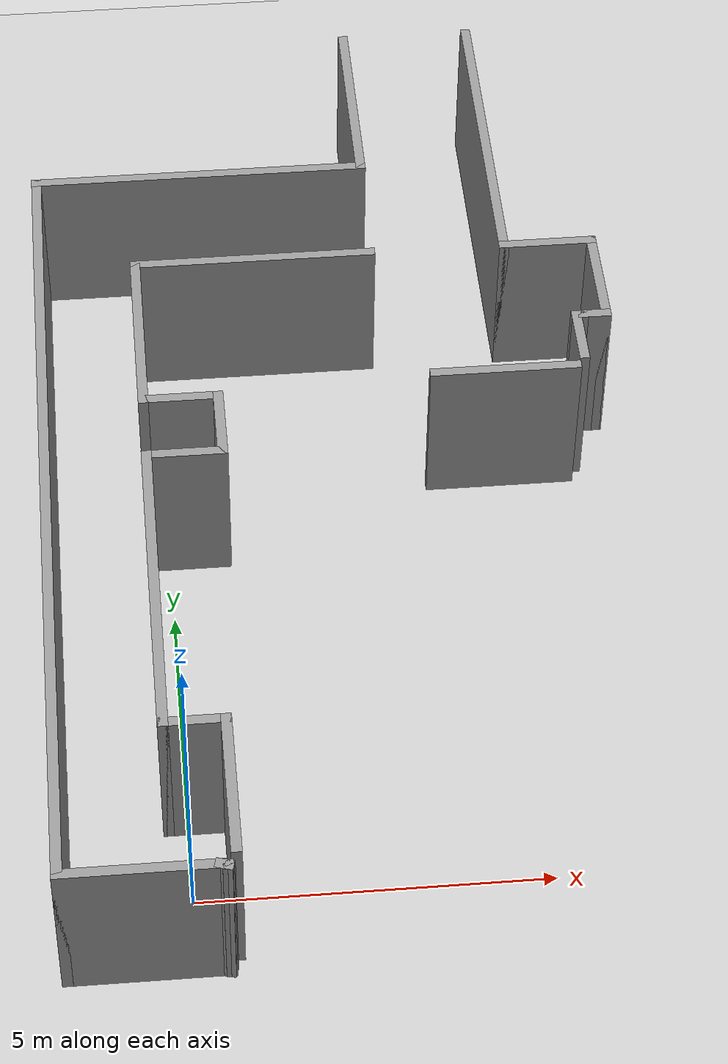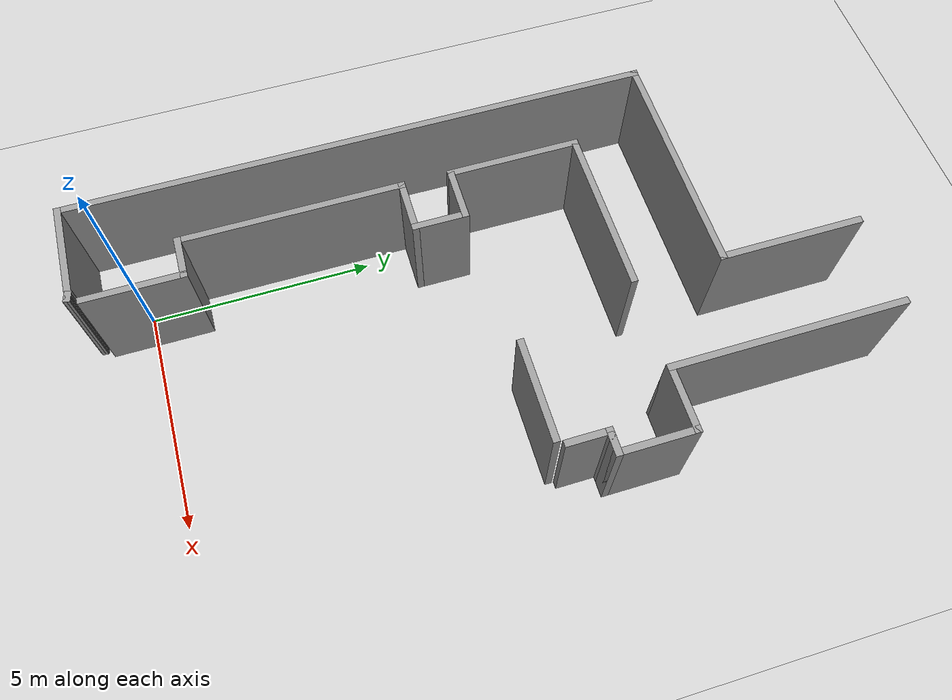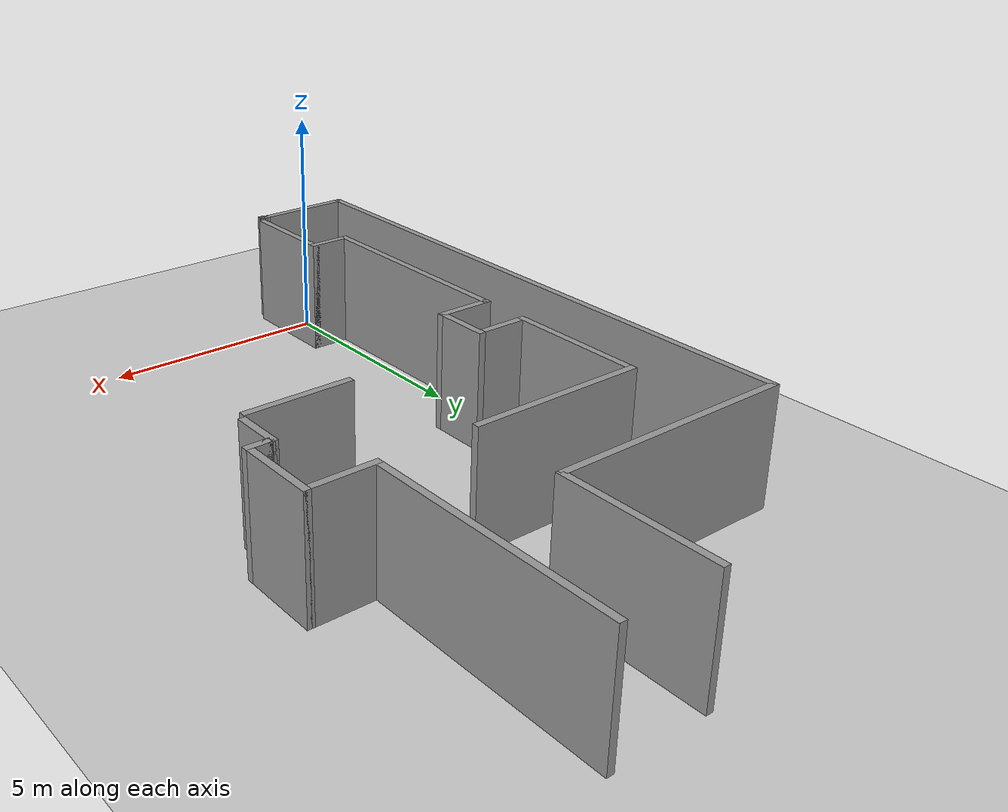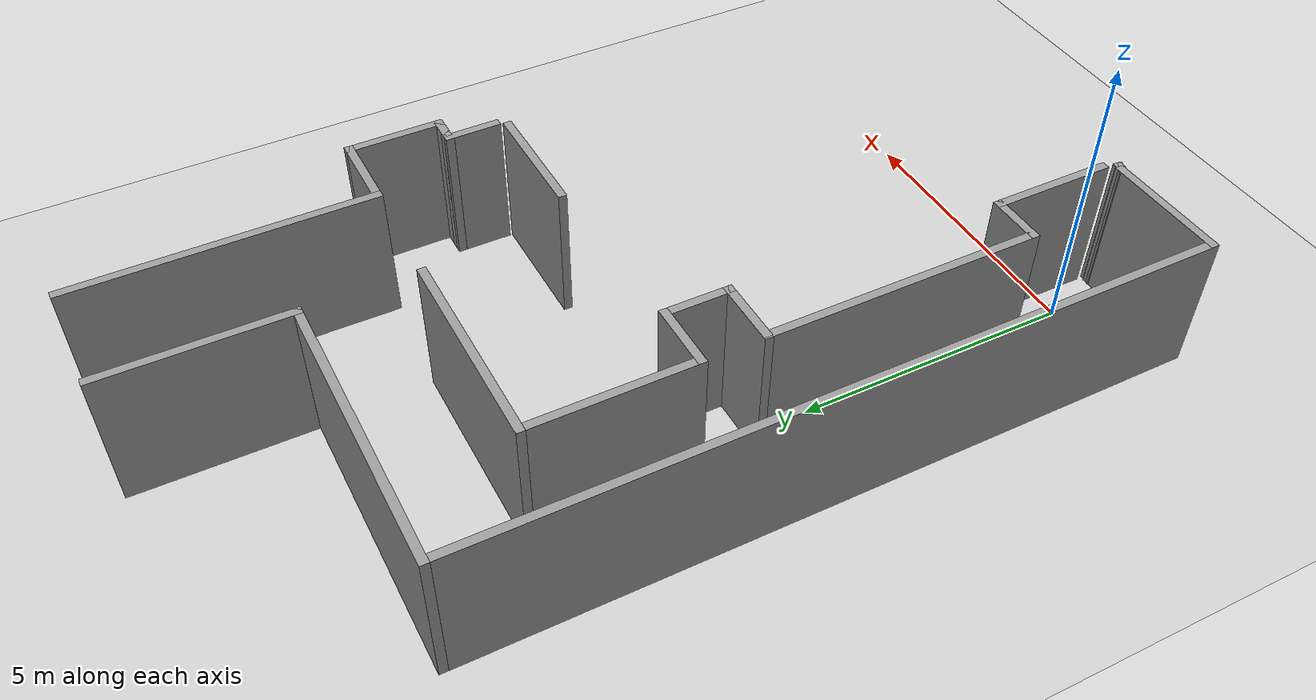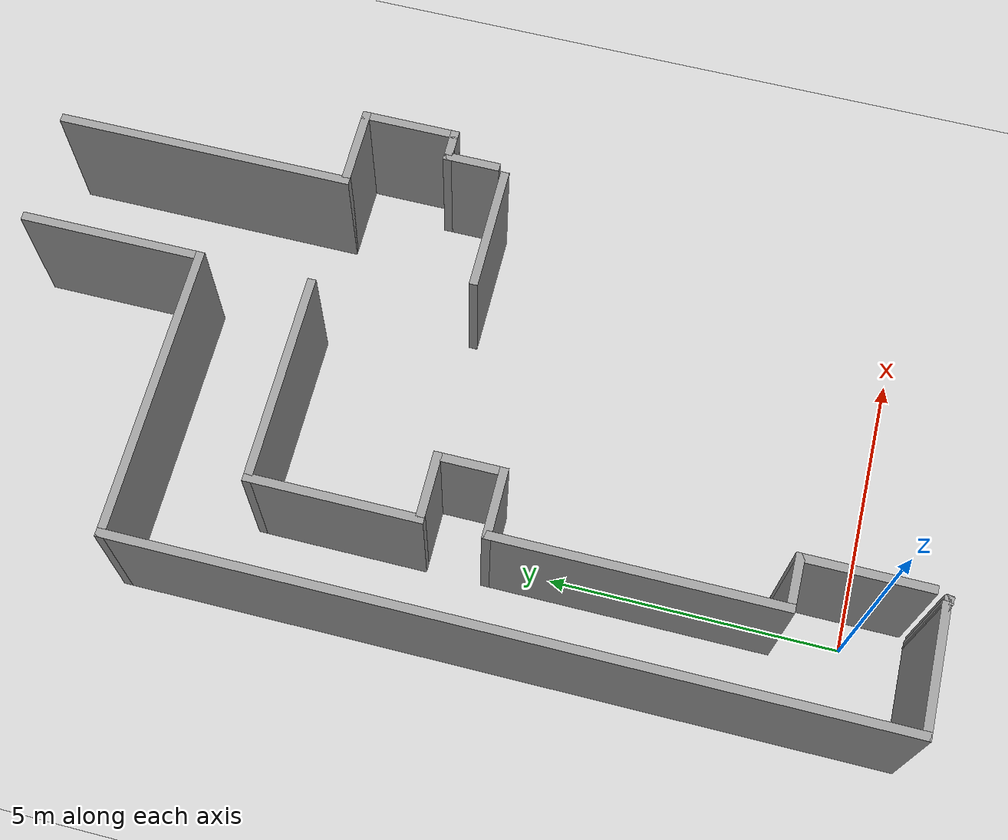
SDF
<sdf version="1.6">
 <world name="default">
  <light name="sun" type="directional">
   <pose>0 0 10 0 -0 0</pose>
   <diffuse>0.8 0.8 0.8 1</diffuse>
   <specular>0.2 0.2 0.2 1</specular>
   <attenuation>
    <range>1000</range>
    <constant>0.9</constant>
    <linear>0.01</linear>
    <quadratic>0.001</quadratic>
   </attenuation>
   <direction>-0.5 0.1 -0.9</direction>
  </light>
  <model name="ground_plane">
   <static>1</static>
   <link name="link">
    <collision name="collision">
     <geometry><plane><normal>0 0 1</normal><size>100 100</size></plane></geometry>
     <surface>
      <contact><collide_bitmask>65535</collide_bitmask></contact>
      <friction><ode><mu>100</mu><mu2>50</mu2></ode></friction>
     </surface>
    </collision>
    <visual name="visual">
     <cast_shadows>0</cast_shadows>
     <geometry><plane><normal>0 0 1</normal><size>100 100</size></plane></geometry>
     <material>
      <script><uri>file://media/materials/scripts/gazebo.material</uri><name>Gazebo/Grey</name></script>
     </material>
    </visual>
   </link>
  </model>
  <gravity>0 0 -9.8</gravity>
  <magnetic_field>6e-06 2.3e-05 -4.2e-05</magnetic_field>
  <atmosphere type="adiabatic"/>
  <physics name="default_physics" default="0" type="ode">
   <max_step_size>0.001</max_step_size>
   <real_time_factor>1</real_time_factor>
   <real_time_update_rate>1000</real_time_update_rate>
  </physics>
  <scene><ambient>0.4 0.4 0.4 1</ambient><background>0.7 0.7 0.7 1</background><shadows>1</shadows></scene>
  <spherical_coordinates>
   <surface_model>EARTH_WGS84</surface_model>
   <latitude_deg>0</latitude_deg>
   <longitude_deg>0</longitude_deg>
   <elevation>0</elevation>
   <heading_deg>0</heading_deg>
  </spherical_coordinates>
  <model name="200_boston">
   <pose>2.49732 6.97027 0 0 -0 0</pose>
   <link name="Wall_0">
    <collision name="Wall_0_Collision">
     <geometry><box><size>3.75 0.15 2.5</size></box></geometry>
     <pose>0 0 1.25 0 -0 0</pose>
    </collision>
    <visual name="Wall_0_Visual">
     <pose>0 0 1.25 0 -0 0</pose>
     <geometry><box><size>3.75 0.15 2.5</size></box></geometry>
     <material>
      <script><uri>file://media/materials/scripts/gazebo.material</uri><name>Gazebo/Grey</name></script>
      <ambient>1 1 1 1</ambient>
     </material>
     <meta><layer>0</layer></meta>
    </visual>
    <pose>-0.974349 3.04344 0 0 -0 3.14159</pose>
   </link>
   <link name="Wall_1">
    <collision name="Wall_1_Collision">
     <geometry><box><size>3 0.15 2.5</size></box></geometry>
     <pose>0 0 1.25 0 -0 0</pose>
    </collision>
    <visual name="Wall_1_Visual">
     <pose>0 0 1.25 0 -0 0</pose>
     <geometry><box><size>3 0.15 2.5</size></box></geometry>
     <material>
      <script><uri>file://media/materials/scripts/gazebo.material</uri><name>Gazebo/Grey</name></script>
      <ambient>1 1 1 1</ambient>
     </material>
     <meta><layer>0</layer></meta>
    </visual>
    <pose>-2.77435 1.61844 0 0 0 -1.5708</pose>
   </link>
   <link name="Wall_11">
    <collision name="Wall_11_Collision">
     <geometry><box><size>5.25 0.15 2.5</size></box></geometry>
     <pose>0 0 1.25 0 -0 0</pose>
    </collision>
    <visual name="Wall_11_Visual">
     <pose>0 0 1.25 0 -0 0</pose>
     <geometry><box><size>5.25 0.15 2.5</size></box></geometry>
     <material>
      <script><uri>file://media/materials/scripts/gazebo.material</uri><name>Gazebo/Grey</name></script>
      <ambient>1 1 1 1</ambient>
     </material>
     <meta><layer>0</layer></meta>
    </visual>
    <pose>-1.68917 5.01345 0 0 -0 3.14159</pose>
   </link>
   <link name="Wall_12">
    <collision name="Wall_12_Collision">
     <geometry><box><size>13.25 0.15 2.5</size></box></geometry>
     <pose>0 0 1.25 0 -0 0</pose>
    </collision>
    <visual name="Wall_12_Visual">
     <pose>0 0 1.25 0 -0 0</pose>
     <geometry><box><size>13.25 0.15 2.5</size></box></geometry>
     <material>
      <script><uri>file://media/materials/scripts/gazebo.material</uri><name>Gazebo/Grey</name></script>
      <ambient>1 1 1 1</ambient>
     </material>
     <meta><layer>0</layer></meta>
    </visual>
    <pose>-4.23917 -1.53655 0 0 0 -1.5708</pose>
   </link>
   <link name="Wall_13">
    <collision name="Wall_13_Collision">
     <geometry><box><size>2.25 0.15 2.5</size></box></geometry>
     <pose>0 0 1.25 0 -0 0</pose>
    </collision>
    <visual name="Wall_13_Visual">
     <pose>0 0 1.25 0 -0 0</pose>
     <geometry><box><size>2.25 0.15 2.5</size></box></geometry>
     <material>
      <script><uri>file://media/materials/scripts/gazebo.material</uri><name>Gazebo/Grey</name></script>
      <ambient>1 1 1 1</ambient>
     </material>
     <meta><layer>0</layer></meta>
    </visual>
    <pose>-3.18917 -8.08655 0 0 -0 0</pose>
   </link>
   <link name="Wall_14">
    <collision name="Wall_14_Collision">
     <geometry><box><size>0.25 0.15 2.5</size></box></geometry>
     <pose>0 0 1.25 0 -0 0</pose>
    </collision>
    <visual name="Wall_14_Visual">
     <pose>0 0 1.25 0 -0 0</pose>
     <geometry><box><size>0.25 0.15 2.5</size></box></geometry>
     <material>
      <script><uri>file://media/materials/scripts/gazebo.material</uri><name>Gazebo/Grey</name></script>
      <ambient>1 1 1 1</ambient>
     </material>
     <meta><layer>0</layer></meta>
    </visual>
    <pose>-2.09087 -8.09949 0 0 0 -0.261799</pose>
   </link>
   <link name="Wall_15">
    <collision name="Wall_15_Collision">
     <geometry><box><size>0.15 0.15 2.5</size></box></geometry>
     <pose>0 0 1.25 0 -0 0</pose>
    </collision>
    <visual name="Wall_15_Visual">
     <pose>0 0 1.25 0 -0 0</pose>
     <geometry><box><size>0.15 0.15 2.5</size></box></geometry>
     <material>
      <script><uri>file://media/materials/scripts/gazebo.material</uri><name>Gazebo/Grey</name></script>
      <ambient>1 1 1 1</ambient>
     </material>
     <meta><layer>0</layer></meta>
    </visual>
    <pose>-2.04258 -8.11243 0 0 -0 0</pose>
   </link>
   <link name="Wall_17">
    <collision name="Wall_17_Collision">
     <geometry><box><size>3.25 0.15 2.5</size></box></geometry>
     <pose>0 0 1.25 0 -0 0</pose>
    </collision>
    <visual name="Wall_17_Visual">
     <pose>0 0 1.25 0 -0 0</pose>
     <geometry><box><size>3.25 0.15 2.5</size></box></geometry>
     <material>
      <script><uri>file://media/materials/scripts/gazebo.material</uri><name>Gazebo/Grey</name></script>
      <ambient>1 1 1 1</ambient>
     </material>
     <meta><layer>0</layer></meta>
    </visual>
    <pose>0.86083 6.56345 0 0 -0 1.5708</pose>
   </link>
   <link name="Wall_19">
    <collision name="Wall_19_Collision">
     <geometry><box><size>5.25 0.15 2.5</size></box></geometry>
     <pose>0 0 1.25 0 -0 0</pose>
    </collision>
    <visual name="Wall_19_Visual">
     <pose>0 0 1.25 0 -0 0</pose>
     <geometry><box><size>5.25 0.15 2.5</size></box></geometry>
     <material>
      <script><uri>file://media/materials/scripts/gazebo.material</uri><name>Gazebo/Grey</name></script>
      <ambient>1 1 1 1</ambient>
     </material>
     <meta><layer>0</layer></meta>
    </visual>
    <pose>2.88917 5.57928 0 0 0 -1.5708</pose>
   </link>
   <link name="Wall_2">
    <collision name="Wall_2_Collision">
     <geometry><box><size>1.25 0.15 2.5</size></box></geometry>
     <pose>0 0 1.25 0 -0 0</pose>
    </collision>
    <visual name="Wall_2_Visual">
     <pose>0 0 1.25 0 -0 0</pose>
     <geometry><box><size>1.25 0.15 2.5</size></box></geometry>
     <material>
      <script><uri>file://media/materials/scripts/gazebo.material</uri><name>Gazebo/Grey</name></script>
      <ambient>1 1 1 1</ambient>
     </material>
     <meta><layer>0</layer></meta>
    </visual>
    <pose>-2.22435 0.193443 0 0 -0 0</pose>
   </link>
   <link name="Wall_20">
    <collision name="Wall_20_Collision">
     <geometry><box><size>1.5 0.15 2.5</size></box></geometry>
     <pose>0 0 1.25 0 -0 0</pose>
    </collision>
    <visual name="Wall_20_Visual">
     <pose>0 0 1.25 0 -0 0</pose>
     <geometry><box><size>1.5 0.15 2.5</size></box></geometry>
     <material>
      <script><uri>file://media/materials/scripts/gazebo.material</uri><name>Gazebo/Grey</name></script>
      <ambient>1 1 1 1</ambient>
     </material>
     <meta><layer>0</layer></meta>
    </visual>
    <pose>3.56417 3.02928 0 0 -0 0</pose>
   </link>
   <link name="Wall_21">
    <collision name="Wall_21_Collision">
     <geometry><box><size>1.75 0.15 2.5</size></box></geometry>
     <pose>0 0 1.25 0 -0 0</pose>
    </collision>
    <visual name="Wall_21_Visual">
     <pose>0 0 1.25 0 -0 0</pose>
     <geometry><box><size>1.75 0.15 2.5</size></box></geometry>
     <material>
      <script><uri>file://media/materials/scripts/gazebo.material</uri><name>Gazebo/Grey</name></script>
      <ambient>1 1 1 1</ambient>
     </material>
     <meta><layer>0</layer></meta>
    </visual>
    <pose>4.23917 2.22928 0 0 0 -1.5708</pose>
   </link>
   <link name="Wall_22">
    <collision name="Wall_22_Collision">
     <geometry><box><size>0.5 0.15 2.5</size></box></geometry>
     <pose>0 0 1.25 0 -0 0</pose>
    </collision>
    <visual name="Wall_22_Visual">
     <pose>0 0 1.25 0 -0 0</pose>
     <geometry><box><size>0.5 0.15 2.5</size></box></geometry>
     <material>
      <script><uri>file://media/materials/scripts/gazebo.material</uri><name>Gazebo/Grey</name></script>
      <ambient>1 1 1 1</ambient>
     </material>
     <meta><layer>0</layer></meta>
    </visual>
    <pose>4.06417 1.42928 0 0 -0 3.14159</pose>
   </link>
   <link name="Wall_23">
    <collision name="Wall_23_Collision">
     <geometry><box><size>0.15 0.15 2.5</size></box></geometry>
     <pose>0 0 1.25 0 -0 0</pose>
    </collision>
    <visual name="Wall_23_Visual">
     <pose>0 0 1.25 0 -0 0</pose>
     <geometry><box><size>0.15 0.15 2.5</size></box></geometry>
     <material>
      <script><uri>file://media/materials/scripts/gazebo.material</uri><name>Gazebo/Grey</name></script>
      <ambient>1 1 1 1</ambient>
     </material>
     <meta><layer>0</layer></meta>
    </visual>
    <pose>3.88917 1.42928 0 0 -0 0</pose>
   </link>
   <link name="Wall_24">
    <collision name="Wall_24_Collision">
     <geometry><box><size>0.25 0.15 2.5</size></box></geometry>
     <pose>0 0 1.25 0 -0 0</pose>
    </collision>
    <visual name="Wall_24_Visual">
     <pose>0 0 1.25 0 -0 0</pose>
     <geometry><box><size>0.25 0.15 2.5</size></box></geometry>
     <material>
      <script><uri>file://media/materials/scripts/gazebo.material</uri><name>Gazebo/Grey</name></script>
      <ambient>1 1 1 1</ambient>
     </material>
     <meta><layer>0</layer></meta>
    </visual>
    <pose>3.83917 1.42928 0 0 -0 3.14159</pose>
   </link>
   <link name="Wall_25">
    <collision name="Wall_25_Collision">
     <geometry><box><size>1 0.15 2.5</size></box></geometry>
     <pose>0 0 1.25 0 -0 0</pose>
    </collision>
    <visual name="Wall_25_Visual">
     <pose>0 0 1.25 0 -0 0</pose>
     <geometry><box><size>1 0.15 2.5</size></box></geometry>
     <material>
      <script><uri>file://media/materials/scripts/gazebo.material</uri><name>Gazebo/Grey</name></script>
      <ambient>1 1 1 1</ambient>
     </material>
     <meta><layer>0</layer></meta>
    </visual>
    <pose>3.78917 1.00428 0 0 0 -1.5708</pose>
   </link>
   <link name="Wall_27">
    <collision name="Wall_27_Collision">
     <geometry><box><size>2.25 0.15 2.5</size></box></geometry>
     <pose>0 0 1.25 0 -0 0</pose>
    </collision>
    <visual name="Wall_27_Visual">
     <pose>0 0 1.25 0 -0 0</pose>
     <geometry><box><size>2.25 0.15 2.5</size></box></geometry>
     <material>
      <script><uri>file://media/materials/scripts/gazebo.material</uri><name>Gazebo/Grey</name></script>
      <ambient>1 1 1 1</ambient>
     </material>
     <meta><layer>0</layer></meta>
    </visual>
    <pose>2.5932 0.389956 0 0 -0 0</pose>
   </link>
   <link name="Wall_3">
    <collision name="Wall_3_Collision">
     <geometry><box><size>1.25 0.15 2.5</size></box></geometry>
     <pose>0 0 1.25 0 -0 0</pose>
    </collision>
    <visual name="Wall_3_Visual">
     <pose>0 0 1.25 0 -0 0</pose>
     <geometry><box><size>1.25 0.15 2.5</size></box></geometry>
     <material>
      <script><uri>file://media/materials/scripts/gazebo.material</uri><name>Gazebo/Grey</name></script>
      <ambient>1 1 1 1</ambient>
     </material>
     <meta><layer>0</layer></meta>
    </visual>
    <pose>-1.67435 -0.356557 0 0 0 -1.5708</pose>
   </link>
   <link name="Wall_4">
    <collision name="Wall_4_Collision">
     <geometry><box><size>1.25 0.15 2.5</size></box></geometry>
     <pose>0 0 1.25 0 -0 0</pose>
    </collision>
    <visual name="Wall_4_Visual">
     <pose>0 0 1.25 0 -0 0</pose>
     <geometry><box><size>1.25 0.15 2.5</size></box></geometry>
     <material>
      <script><uri>file://media/materials/scripts/gazebo.material</uri><name>Gazebo/Grey</name></script>
      <ambient>1 1 1 1</ambient>
     </material>
     <meta><layer>0</layer></meta>
    </visual>
    <pose>-2.22435 -0.906557 0 0 -0 3.14159</pose>
   </link>
   <link name="Wall_5">
    <collision name="Wall_5_Collision">
     <geometry><box><size>5 0.15 2.5</size></box></geometry>
     <pose>0 0 1.25 0 -0 0</pose>
    </collision>
    <visual name="Wall_5_Visual">
     <pose>0 0 1.25 0 -0 0</pose>
     <geometry><box><size>5 0.15 2.5</size></box></geometry>
     <material>
      <script><uri>file://media/materials/scripts/gazebo.material</uri><name>Gazebo/Grey</name></script>
      <ambient>1 1 1 1</ambient>
     </material>
     <meta><layer>0</layer></meta>
    </visual>
    <pose>-2.77435 -3.33156 0 0 0 -1.5708</pose>
   </link>
   <link name="Wall_6">
    <collision name="Wall_6_Collision">
     <geometry><box><size>1 0.15 2.5</size></box></geometry>
     <pose>0 0 1.25 0 -0 0</pose>
    </collision>
    <visual name="Wall_6_Visual">
     <pose>0 0 1.25 0 -0 0</pose>
     <geometry><box><size>1 0.15 2.5</size></box></geometry>
     <material>
      <script><uri>file://media/materials/scripts/gazebo.material</uri><name>Gazebo/Grey</name></script>
      <ambient>1 1 1 1</ambient>
     </material>
     <meta><layer>0</layer></meta>
    </visual>
    <pose>-2.34935 -5.75656 0 0 -0 0</pose>
   </link>
   <link name="Wall_7">
    <collision name="Wall_7_Collision">
     <geometry><box><size>2.25 0.15 2.5</size></box></geometry>
     <pose>0 0 1.25 0 -0 0</pose>
    </collision>
    <visual name="Wall_7_Visual">
     <pose>0 0 1.25 0 -0 0</pose>
     <geometry><box><size>2.25 0.15 2.5</size></box></geometry>
     <material>
      <script><uri>file://media/materials/scripts/gazebo.material</uri><name>Gazebo/Grey</name></script>
      <ambient>1 1 1 1</ambient>
     </material>
     <meta><layer>0</layer></meta>
    </visual>
    <pose>-1.92435 -6.80656 0 0 0 -1.5708</pose>
   </link>
   <static>1</static>
  </model>
 </world>
</sdf>
